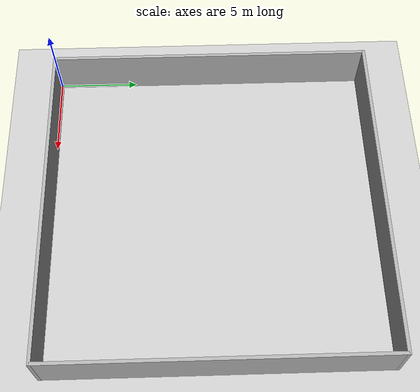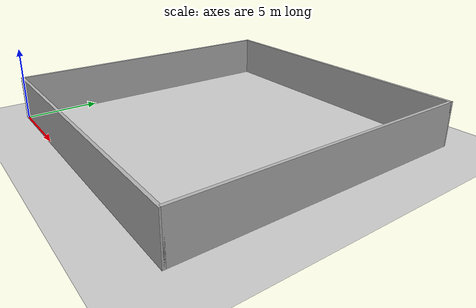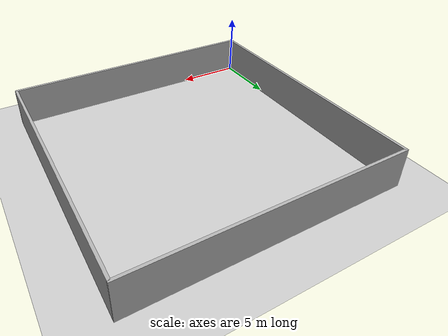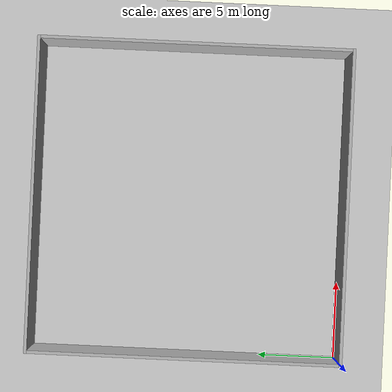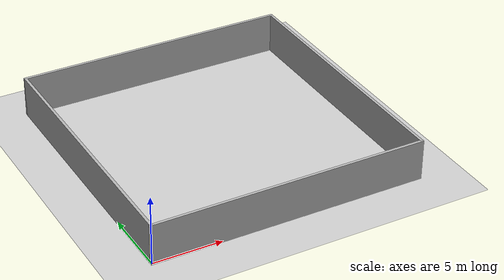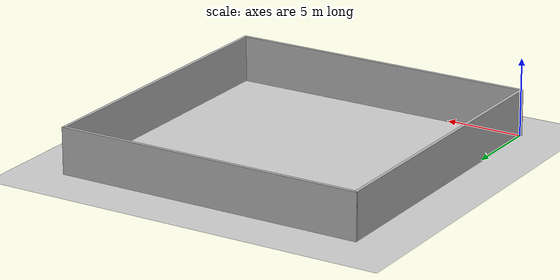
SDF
<?xml version="1.0" ?>
<sdf version="1.6">
  <world name="nuclear_indoor_20x20_clear">
    <include><uri>model://sun</uri></include>
    <include><uri>model://ground_plane</uri></include>

    <physics type="ode">
      <real_time_update_rate>1000.0</real_time_update_rate>
      <max_step_size>0.001</max_step_size>
    </physics>

    <model name="indoor_boundary">
      <static>true</static>

      <link name="wall_south">
        <pose>10 0 1.5 0 0 0</pose>
        <collision name="collision"><geometry><box><size>20.2 0.2 3</size></box></geometry></collision>
        <visual name="visual">
          <geometry><box><size>20.2 0.2 3</size></box></geometry>
          <material><ambient>0.7 0.7 0.7 1</ambient></material>
        </visual>
      </link>

      <link name="wall_north">
        <pose>10 20 1.5 0 0 0</pose>
        <collision name="collision"><geometry><box><size>20.2 0.2 3</size></box></geometry></collision>
        <visual name="visual">
          <geometry><box><size>20.2 0.2 3</size></box></geometry>
          <material><ambient>0.7 0.7 0.7 1</ambient></material>
        </visual>
      </link>

      <link name="wall_west">
        <pose>0 10 1.5 0 0 0</pose>
        <collision name="collision"><geometry><box><size>0.2 20 3</size></box></geometry></collision>
        <visual name="visual">
          <geometry><box><size>0.2 20 3</size></box></geometry>
          <material><ambient>0.7 0.7 0.7 1</ambient></material>
        </visual>
      </link>

      <link name="wall_east">
        <pose>20 10 1.5 0 0 0</pose>
        <collision name="collision"><geometry><box><size>0.2 20 3</size></box></geometry></collision>
        <visual name="visual">
          <geometry><box><size>0.2 20 3</size></box></geometry>
          <material><ambient>0.7 0.7 0.7 1</ambient></material>
        </visual>
      </link>
    </model>
  </world>
</sdf>
